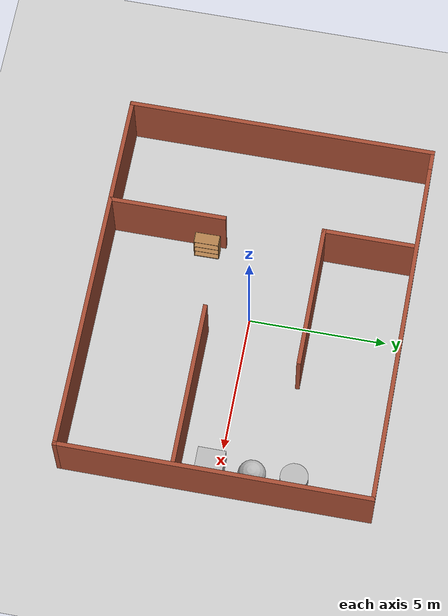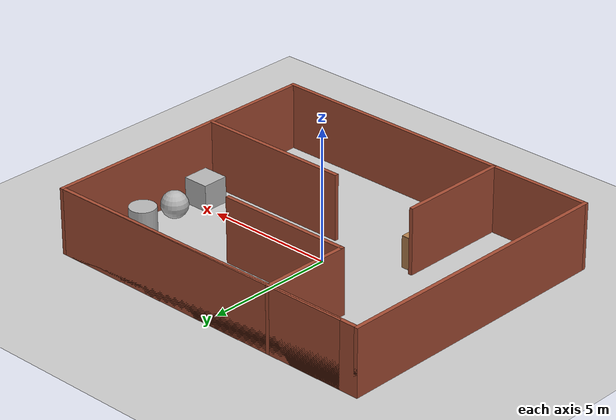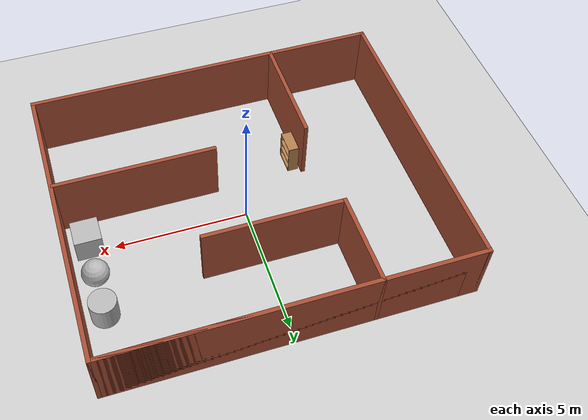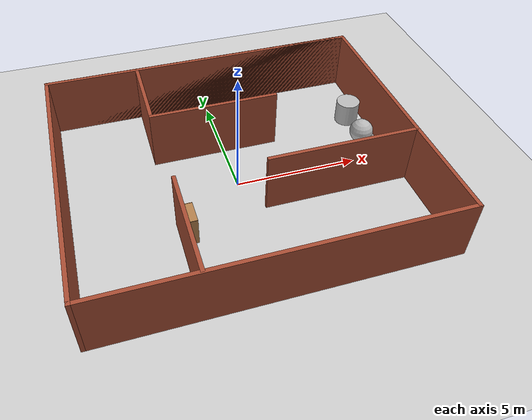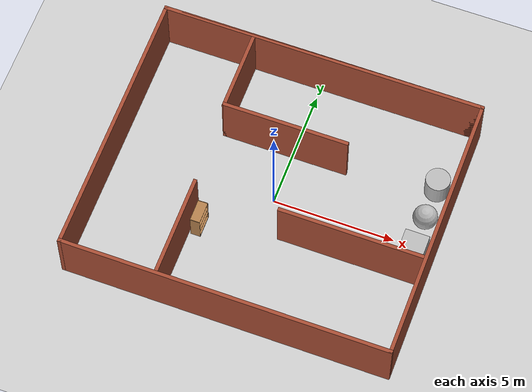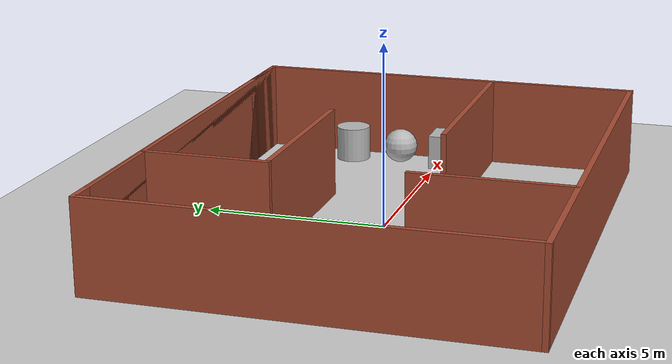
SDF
<sdf version="1.7">
 <world name="default">
  <light name="sun" type="directional">
   <pose>0 0 10 0 -0 0</pose>
   <diffuse>0.8 0.8 0.8 1</diffuse>
   <specular>0.2 0.2 0.2 1</specular>
   <attenuation>
    <range>1000</range>
    <constant>0.9</constant>
    <linear>0.01</linear>
    <quadratic>0.001</quadratic>
   </attenuation>
   <direction>-0.5 0.1 -0.9</direction>
   <spot><inner_angle>0</inner_angle><outer_angle>0</outer_angle><falloff>0</falloff></spot>
  </light>
  <model name="ground_plane">
   <static>1</static>
   <link name="link">
    <collision name="collision">
     <geometry><plane><normal>0 0 1</normal><size>100 100</size></plane></geometry>
     <surface><friction><ode><mu>100</mu><mu2>50</mu2></ode></friction></surface>
    </collision>
    <visual name="visual">
     <cast_shadows>0</cast_shadows>
     <geometry><plane><normal>0 0 1</normal><size>100 100</size></plane></geometry>
     <material>
      <script><uri>file://media/materials/scripts/gazebo.material</uri><name>Gazebo/Grey</name></script>
     </material>
    </visual>
   </link>
  </model>
  <gravity>0 0 -9.8</gravity>
  <magnetic_field>6e-06 2.3e-05 -4.2e-05</magnetic_field>
  <atmosphere type="adiabatic"/>
  <physics type="ode">
   <max_step_size>0.001</max_step_size>
   <real_time_factor>1</real_time_factor>
   <real_time_update_rate>1000</real_time_update_rate>
  </physics>
  <scene><ambient>0.4 0.4 0.4 1</ambient><background>0.7 0.7 0.7 1</background><shadows>1</shadows></scene>
  <audio><device>default</device></audio>
  <spherical_coordinates>
   <surface_model>EARTH_WGS84</surface_model>
   <latitude_deg>0</latitude_deg>
   <longitude_deg>0</longitude_deg>
   <elevation>0</elevation>
   <heading_deg>0</heading_deg>
  </spherical_coordinates>
  <model name="simple">
   <pose>0.011754 -0.028761 0 0 -0 0</pose>
   <link name="Wall_1">
    <collision name="Wall_1_Collision">
     <geometry><box><size>12.75 0.15 2.5</size></box></geometry>
     <pose>0 0 1.25 0 -0 0</pose>
    </collision>
    <visual name="Wall_1_Visual">
     <pose>0 0 1.25 0 -0 0</pose>
     <geometry><box><size>12.75 0.15 2.5</size></box></geometry>
     <material>
      <script><uri>file://media/materials/scripts/gazebo.material</uri><name>Gazebo/Bricks</name></script>
      <ambient>1 1 1 1</ambient>
     </material>
     <meta><layer>0</layer></meta>
    </visual>
    <pose>0.375 5.55 0 0 -0 0</pose>
   </link>
   <link name="Wall_10">
    <collision name="Wall_10_Collision">
     <geometry><box><size>6 0.15 2.5</size></box></geometry>
     <pose>0 0 1.25 0 -0 0</pose>
    </collision>
    <visual name="Wall_10_Visual">
     <pose>0 0 1.25 0 -0 0</pose>
     <geometry><box><size>6 0.15 2.5</size></box></geometry>
     <material>
      <script><uri>file://media/materials/scripts/gazebo.material</uri><name>Gazebo/Bricks</name></script>
      <ambient>1 1 1 1</ambient>
     </material>
     <meta><layer>0</layer></meta>
    </visual>
    <pose>3.67364 -1.41539 0 0 -0 3.14159</pose>
   </link>
   <link name="Wall_13">
    <collision name="Wall_13_Collision">
     <geometry><box><size>4.25 0.15 2.5</size></box></geometry>
     <pose>0 0 1.25 0 -0 0</pose>
    </collision>
    <visual name="Wall_13_Visual">
     <pose>0 0 1.25 0 -0 0</pose>
     <geometry><box><size>4.25 0.15 2.5</size></box></geometry>
     <material>
      <script><uri>file://media/materials/scripts/gazebo.material</uri><name>Gazebo/Bricks</name></script>
      <ambient>1 1 1 1</ambient>
     </material>
     <meta><layer>0</layer></meta>
    </visual>
    <pose>-2.75121 -3.4473 0 0 -0 1.5708</pose>
   </link>
   <link name="Wall_2">
    <collision name="Wall_2_Collision">
     <geometry><box><size>11.25 0.15 2.5</size></box></geometry>
     <pose>0 0 1.25 0 -0 0</pose>
    </collision>
    <visual name="Wall_2_Visual">
     <pose>0 0 1.25 0 -0 0</pose>
     <geometry><box><size>11.25 0.15 2.5</size></box></geometry>
     <material>
      <script><uri>file://media/materials/scripts/gazebo.material</uri><name>Gazebo/Bricks</name></script>
      <ambient>1 1 1 1</ambient>
     </material>
     <meta><layer>0</layer></meta>
    </visual>
    <pose>6.675 0 0 0 -0 -1.5708</pose>
   </link>
   <link name="Wall_3">
    <collision name="Wall_3_Collision">
     <geometry><box><size>13.5 0.15 2.5</size></box></geometry>
     <pose>0 0 1.25 0 -0 0</pose>
    </collision>
    <visual name="Wall_3_Visual">
     <pose>0 0 1.25 0 -0 0</pose>
     <geometry><box><size>13.5 0.15 2.5</size></box></geometry>
     <material>
      <script><uri>file://media/materials/scripts/gazebo.material</uri><name>Gazebo/Bricks</name></script>
      <ambient>1 1 1 1</ambient>
     </material>
     <meta><layer>0</layer></meta>
    </visual>
    <pose>0 -5.55 0 0 -0 3.14159</pose>
   </link>
   <link name="Wall_4">
    <collision name="Wall_4_Collision">
     <geometry><box><size>11.25 0.15 2.5</size></box></geometry>
     <pose>0 0 1.25 0 -0 0</pose>
    </collision>
    <visual name="Wall_4_Visual">
     <pose>0 0 1.25 0 -0 0</pose>
     <geometry><box><size>11.25 0.15 2.5</size></box></geometry>
     <material>
      <script><uri>file://media/materials/scripts/gazebo.material</uri><name>Gazebo/Bricks</name></script>
      <ambient>1 1 1 1</ambient>
     </material>
     <meta><layer>0</layer></meta>
    </visual>
    <pose>-6.675 0 0 0 -0 1.5708</pose>
   </link>
   <link name="Wall_5">
    <collision name="Wall_5_Collision">
     <geometry><box><size>13.5 0.15 2.5</size></box></geometry>
     <pose>0 0 1.25 0 -0 0</pose>
    </collision>
    <visual name="Wall_5_Visual">
     <pose>0 0 1.25 0 -0 0</pose>
     <geometry><box><size>13.5 0.15 2.5</size></box></geometry>
     <material>
      <script><uri>file://media/materials/scripts/gazebo.material</uri><name>Gazebo/Bricks</name></script>
      <ambient>1 1 1 1</ambient>
     </material>
     <meta><layer>0</layer></meta>
    </visual>
    <pose>0 5.55 0 0 -0 0</pose>
   </link>
   <link name="Wall_7">
    <collision name="Wall_7_Collision">
     <geometry><box><size>3.5 0.15 2.5</size></box></geometry>
     <pose>0 0 1.25 0 -0 0</pose>
    </collision>
    <visual name="Wall_7_Visual">
     <pose>0 0 1.25 0 -0 0</pose>
     <geometry><box><size>3.5 0.15 2.5</size></box></geometry>
     <material>
      <script><uri>file://media/materials/scripts/gazebo.material</uri><name>Gazebo/Bricks</name></script>
      <ambient>1 1 1 1</ambient>
     </material>
     <meta><layer>0</layer></meta>
    </visual>
    <pose>-2.89963 3.875 0 0 -0 -1.5708</pose>
   </link>
   <link name="Wall_8">
    <collision name="Wall_8_Collision">
     <geometry><box><size>5.25 0.15 2.5</size></box></geometry>
     <pose>0 0 1.25 0 -0 0</pose>
    </collision>
    <visual name="Wall_8_Visual">
     <pose>0 0 1.25 0 -0 0</pose>
     <geometry><box><size>5.25 0.15 2.5</size></box></geometry>
     <material>
      <script><uri>file://media/materials/scripts/gazebo.material</uri><name>Gazebo/Bricks</name></script>
      <ambient>1 1 1 1</ambient>
     </material>
     <meta><layer>0</layer></meta>
    </visual>
    <pose>-0.349626 2.2 0 0 -0 0</pose>
   </link>
   <static>1</static>
  </model>
  <model name="bookshelf">
   <static>1</static>
   <link name="link">
    <inertial><mass>1</mass></inertial>
    <collision name="back">
     <pose>0 0.005 0.6 0 -0 0</pose>
     <geometry><box><size>0.9 0.01 1.2</size></box></geometry>
    </collision>
    <visual name="visual1">
     <pose>0 0.005 0.6 0 -0 0</pose>
     <geometry><box><size>0.9 0.01 1.2</size></box></geometry>
     <material>
      <script><uri>file://media/materials/scripts/gazebo.material</uri><name>Gazebo/Wood</name></script>
     </material>
    </visual>
    <collision name="left_side">
     <pose>0.45 -0.195 0.6 0 -0 0</pose>
     <geometry><box><size>0.02 0.4 1.2</size></box></geometry>
    </collision>
    <visual name="visual2">
     <pose>0.45 -0.195 0.6 0 -0 0</pose>
     <geometry><box><size>0.02 0.4 1.2</size></box></geometry>
     <material>
      <script><uri>file://media/materials/scripts/gazebo.material</uri><name>Gazebo/Wood</name></script>
     </material>
    </visual>
    <collision name="right_side">
     <pose>-0.45 -0.195 0.6 0 -0 0</pose>
     <geometry><box><size>0.02 0.4 1.2</size></box></geometry>
    </collision>
    <visual name="visual3">
     <pose>-0.45 -0.195 0.6 0 -0 0</pose>
     <geometry><box><size>0.02 0.4 1.2</size></box></geometry>
     <material>
      <script><uri>file://media/materials/scripts/gazebo.material</uri><name>Gazebo/Wood</name></script>
     </material>
    </visual>
    <collision name="bottom">
     <pose>0 -0.195 0.03 0 -0 0</pose>
     <geometry><box><size>0.88 0.4 0.06</size></box></geometry>
    </collision>
    <visual name="visual4">
     <pose>0 -0.195 0.03 0 -0 0</pose>
     <geometry><box><size>0.88 0.4 0.06</size></box></geometry>
     <material>
      <script><uri>file://media/materials/scripts/gazebo.material</uri><name>Gazebo/Wood</name></script>
     </material>
    </visual>
    <collision name="top">
     <pose>0 -0.195 1.19 0 -0 0</pose>
     <geometry><box><size>0.88 0.4 0.02</size></box></geometry>
    </collision>
    <visual name="visual5">
     <pose>0 -0.195 1.19 0 -0 0</pose>
     <geometry><box><size>0.88 0.4 0.02</size></box></geometry>
     <material>
      <script><uri>file://media/materials/scripts/gazebo.material</uri><name>Gazebo/Wood</name></script>
     </material>
    </visual>
    <collision name="low_shelf">
     <pose>0 -0.195 0.43 0 -0 0</pose>
     <geometry><box><size>0.88 0.4 0.02</size></box></geometry>
    </collision>
    <visual name="visual6">
     <pose>0 -0.195 0.43 0 -0 0</pose>
     <geometry><box><size>0.88 0.4 0.02</size></box></geometry>
     <material>
      <script><uri>file://media/materials/scripts/gazebo.material</uri><name>Gazebo/Wood</name></script>
     </material>
    </visual>
    <collision name="high_shelf">
     <pose>0 -0.195 0.8 0 -0 0</pose>
     <geometry><box><size>0.88 0.4 0.02</size></box></geometry>
    </collision>
    <visual name="visual7">
     <pose>0 -0.195 0.8 0 -0 0</pose>
     <geometry><box><size>0.88 0.4 0.02</size></box></geometry>
     <material>
      <script><uri>file://media/materials/scripts/gazebo.material</uri><name>Gazebo/Wood</name></script>
     </material>
    </visual>
   </link>
   <pose>-2.58056 -2.00343 0 0 -0 1.5766</pose>
  </model>
  <model name="textured_shapes">
   <pose>5.89701 1.17797 0.5 0 1e-06 0</pose>
   <link name="box">
    <pose>0 -1.5 0 0 -0 0</pose>
    <collision name="collision"><geometry><box><size>1 1 1</size></box></geometry></collision>
    <visual name="visual">
     <geometry><box><size>1 1 1</size></box></geometry>
     <material>
      <script>
       <uri>model://textured_shapes/materials/scripts</uri>
       <uri>model://textured_shapes/materials/textures</uri>
       <name>TexturedShape/Squares</name>
      </script>
     </material>
    </visual>
    <inertial>
     <inertia><ixx>1</ixx><ixy>0</ixy><ixz>0</ixz><iyy>1</iyy><iyz>0</iyz><izz>1</izz></inertia>
     <mass>1</mass>
    </inertial>
   </link>
   <link name="sphere">
    <collision name="collision"><geometry><sphere><radius>0.5</radius></sphere></geometry></collision>
    <visual name="visual">
     <geometry><sphere><radius>0.5</radius></sphere></geometry>
     <material>
      <script>
       <uri>model://textured_shapes/materials/scripts</uri>
       <uri>model://textured_shapes/materials/textures</uri>
       <name>TexturedShape/Squares</name>
      </script>
     </material>
    </visual>
    <inertial>
     <inertia><ixx>1</ixx><ixy>0</ixy><ixz>0</ixz><iyy>1</iyy><iyz>0</iyz><izz>1</izz></inertia>
     <mass>1</mass>
    </inertial>
   </link>
   <link name="cylinder">
    <pose>0 1.5 0 0 -0 0</pose>
    <collision name="collision">
     <geometry><cylinder><radius>0.5</radius><length>1</length></cylinder></geometry>
    </collision>
    <visual name="visual">
     <geometry><cylinder><radius>0.5</radius><length>1</length></cylinder></geometry>
     <material>
      <script>
       <uri>model://textured_shapes/materials/scripts</uri>
       <uri>model://textured_shapes/materials/textures</uri>
       <name>TexturedShape/Squares</name>
      </script>
     </material>
    </visual>
    <inertial>
     <inertia><ixx>1</ixx><ixy>0</ixy><ixz>0</ixz><iyy>1</iyy><iyz>0</iyz><izz>1</izz></inertia>
     <mass>1</mass>
    </inertial>
   </link>
  </model>
 </world>
</sdf>
